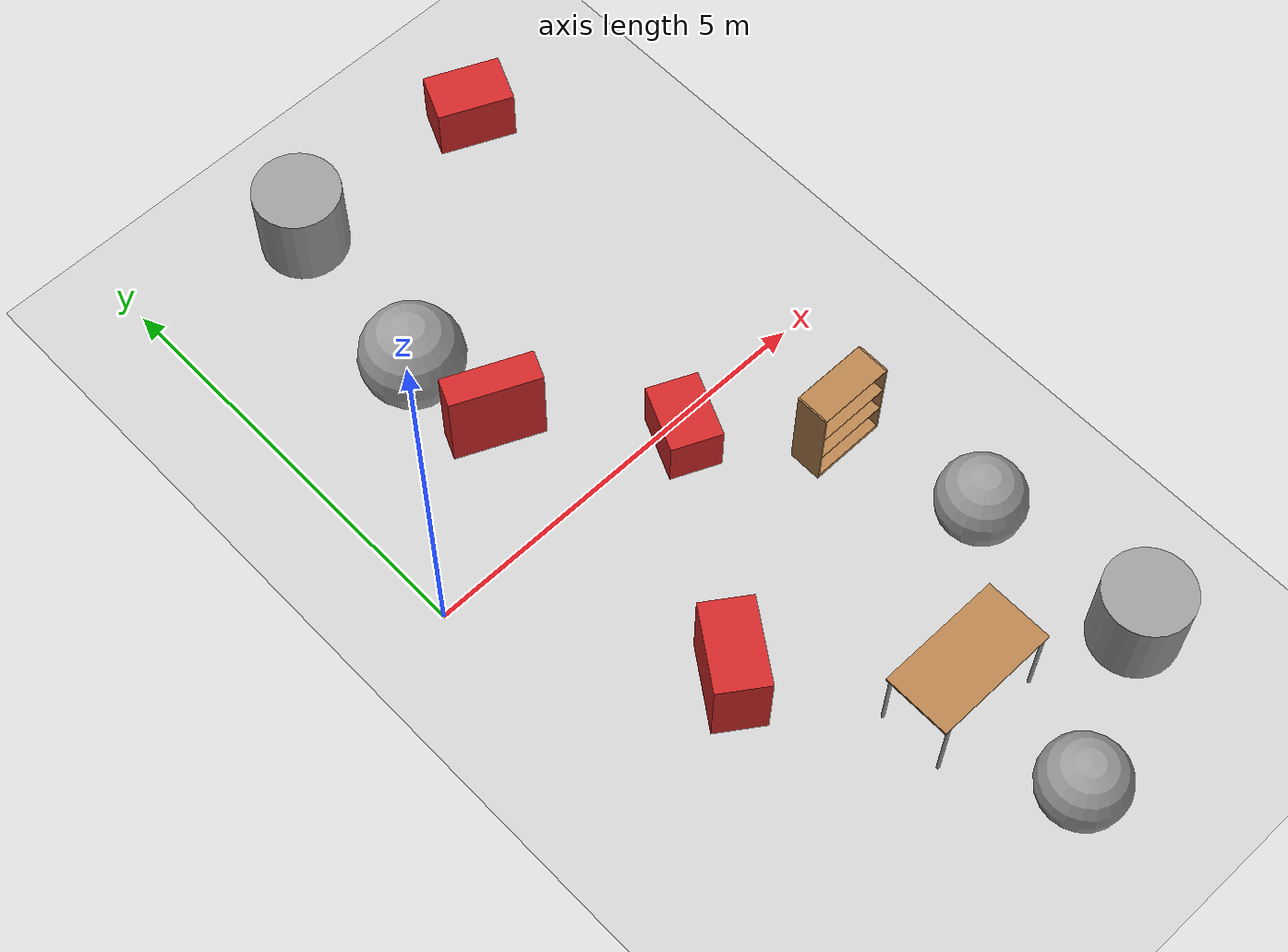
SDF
<sdf version="1.6">
 <world name="default">
  <model name="ground_plane">
   <static>1</static>
   <link name="link">
    <collision name="collision">
     <geometry><plane><normal>0 0 1</normal><size>100 100</size></plane></geometry>
     <surface>
      <contact><collide_bitmask>65535</collide_bitmask></contact>
      <friction><ode><mu>100</mu><mu2>50</mu2></ode></friction>
     </surface>
    </collision>
    <visual name="visual">
     <cast_shadows>0</cast_shadows>
     <geometry><plane><normal>0 0 1</normal><size>100 100</size></plane></geometry>
     <material>
      <script><uri>file://media/materials/scripts/gazebo.material</uri><name>Gazebo/Grey</name></script>
     </material>
    </visual>
   </link>
  </model>
  <model name="table_clone">
   <static>1</static>
   <link name="link">
    <collision name="surface">
     <pose>0 0 1 0 -0 0</pose>
     <geometry><box><size>1.5 0.8 0.03</size></box></geometry>
     <surface><friction><ode><mu>0.6</mu><mu2>0.6</mu2></ode></friction></surface>
    </collision>
    <visual name="visual1">
     <pose>0 0 1 0 -0 0</pose>
     <geometry><box><size>1.5 0.8 0.03</size></box></geometry>
     <material>
      <script><uri>file://media/materials/scripts/gazebo.material</uri><name>Gazebo/Wood</name></script>
     </material>
    </visual>
    <collision name="front_left_leg">
     <pose>0.68 0.38 0.5 0 -0 0</pose>
     <geometry><cylinder><radius>0.02</radius><length>1</length></cylinder></geometry>
    </collision>
    <visual name="front_left_leg">
     <pose>0.68 0.38 0.5 0 -0 0</pose>
     <geometry><cylinder><radius>0.02</radius><length>1</length></cylinder></geometry>
     <material>
      <script><uri>file://media/materials/scripts/gazebo.material</uri><name>Gazebo/Grey</name></script>
     </material>
    </visual>
    <collision name="front_right_leg">
     <pose>0.68 -0.38 0.5 0 -0 0</pose>
     <geometry><cylinder><radius>0.02</radius><length>1</length></cylinder></geometry>
    </collision>
    <visual name="front_right_leg">
     <pose>0.68 -0.38 0.5 0 -0 0</pose>
     <geometry><cylinder><radius>0.02</radius><length>1</length></cylinder></geometry>
     <material>
      <script><uri>file://media/materials/scripts/gazebo.material</uri><name>Gazebo/Grey</name></script>
     </material>
    </visual>
    <collision name="back_right_leg">
     <pose>-0.68 -0.38 0.5 0 -0 0</pose>
     <geometry><cylinder><radius>0.02</radius><length>1</length></cylinder></geometry>
    </collision>
    <visual name="back_right_leg">
     <pose>-0.68 -0.38 0.5 0 -0 0</pose>
     <geometry><cylinder><radius>0.02</radius><length>1</length></cylinder></geometry>
     <material>
      <script><uri>file://media/materials/scripts/gazebo.material</uri><name>Gazebo/Grey</name></script>
     </material>
    </visual>
    <collision name="back_left_leg">
     <pose>-0.68 0.38 0.5 0 -0 0</pose>
     <geometry><cylinder><radius>0.02</radius><length>1</length></cylinder></geometry>
    </collision>
    <visual name="back_left_leg">
     <pose>-0.68 0.38 0.5 0 -0 0</pose>
     <geometry><cylinder><radius>0.02</radius><length>1</length></cylinder></geometry>
     <material>
      <script><uri>file://media/materials/scripts/gazebo.material</uri><name>Gazebo/Grey</name></script>
     </material>
    </visual>
   </link>
   <pose>3.16978 -4.27284 0 0 -0 0</pose>
  </model>
  <model name="bookshelf_clone">
   <static>1</static>
   <link name="link">
    <inertial><mass>1</mass></inertial>
    <collision name="back">
     <pose>0 0.005 0.6 0 -0 0</pose>
     <geometry><box><size>0.9 0.01 1.2</size></box></geometry>
    </collision>
    <visual name="visual1">
     <pose>0 0.005 0.6 0 -0 0</pose>
     <geometry><box><size>0.9 0.01 1.2</size></box></geometry>
     <material>
      <script><uri>file://media/materials/scripts/gazebo.material</uri><name>Gazebo/Wood</name></script>
     </material>
    </visual>
    <collision name="left_side">
     <pose>0.45 -0.195 0.6 0 -0 0</pose>
     <geometry><box><size>0.02 0.4 1.2</size></box></geometry>
    </collision>
    <visual name="visual2">
     <pose>0.45 -0.195 0.6 0 -0 0</pose>
     <geometry><box><size>0.02 0.4 1.2</size></box></geometry>
     <material>
      <script><uri>file://media/materials/scripts/gazebo.material</uri><name>Gazebo/Wood</name></script>
     </material>
    </visual>
    <collision name="right_side">
     <pose>-0.45 -0.195 0.6 0 -0 0</pose>
     <geometry><box><size>0.02 0.4 1.2</size></box></geometry>
    </collision>
    <visual name="visual3">
     <pose>-0.45 -0.195 0.6 0 -0 0</pose>
     <geometry><box><size>0.02 0.4 1.2</size></box></geometry>
     <material>
      <script><uri>file://media/materials/scripts/gazebo.material</uri><name>Gazebo/Wood</name></script>
     </material>
    </visual>
    <collision name="bottom">
     <pose>0 -0.195 0.03 0 -0 0</pose>
     <geometry><box><size>0.88 0.4 0.06</size></box></geometry>
    </collision>
    <visual name="visual4">
     <pose>0 -0.195 0.03 0 -0 0</pose>
     <geometry><box><size>0.88 0.4 0.06</size></box></geometry>
     <material>
      <script><uri>file://media/materials/scripts/gazebo.material</uri><name>Gazebo/Wood</name></script>
     </material>
    </visual>
    <collision name="top">
     <pose>0 -0.195 1.19 0 -0 0</pose>
     <geometry><box><size>0.88 0.4 0.02</size></box></geometry>
    </collision>
    <visual name="visual5">
     <pose>0 -0.195 1.19 0 -0 0</pose>
     <geometry><box><size>0.88 0.4 0.02</size></box></geometry>
     <material>
      <script><uri>file://media/materials/scripts/gazebo.material</uri><name>Gazebo/Wood</name></script>
     </material>
    </visual>
    <collision name="low_shelf">
     <pose>0 -0.195 0.43 0 -0 0</pose>
     <geometry><box><size>0.88 0.4 0.02</size></box></geometry>
    </collision>
    <visual name="visual6">
     <pose>0 -0.195 0.43 0 -0 0</pose>
     <geometry><box><size>0.88 0.4 0.02</size></box></geometry>
     <material>
      <script><uri>file://media/materials/scripts/gazebo.material</uri><name>Gazebo/Wood</name></script>
     </material>
    </visual>
    <collision name="high_shelf">
     <pose>0 -0.195 0.8 0 -0 0</pose>
     <geometry><box><size>0.88 0.4 0.02</size></box></geometry>
    </collision>
    <visual name="visual7">
     <pose>0 -0.195 0.8 0 -0 0</pose>
     <geometry><box><size>0.88 0.4 0.02</size></box></geometry>
     <material>
      <script><uri>file://media/materials/scripts/gazebo.material</uri><name>Gazebo/Wood</name></script>
     </material>
    </visual>
   </link>
   <pose>4.43049 -1.13981 0 0 -0 4e-06</pose>
  </model>
  <model name="unit_cylinder_1">
   <pose>1.96335 4.55514 0.5 0 -0 0</pose>
   <link name="link">
    <inertial>
     <mass>1</mass>
     <inertia><ixx>0.145833</ixx><ixy>0</ixy><ixz>0</ixz><iyy>0.145833</iyy><iyz>0</iyz><izz>0.125</izz></inertia>
    </inertial>
    <collision name="collision">
     <geometry><cylinder><radius>0.501667</radius><length>1</length></cylinder></geometry>
    </collision>
    <visual name="visual">
     <geometry><cylinder><radius>0.501667</radius><length>1</length></cylinder></geometry>
     <material>
      <script><name>Gazebo/Grey</name><uri>file://media/materials/scripts/gazebo.material</uri></script>
     </material>
    </visual>
   </link>
  </model>
  <model name="unit_sphere_0">
   <pose>1.6417 2.30704 0.591817 0 -0 0</pose>
   <link name="link">
    <inertial>
     <mass>1</mass>
     <inertia><ixx>0.1</ixx><ixy>0</ixy><ixz>0</ixz><iyy>0.1</iyy><iyz>0</iyz><izz>0.1</izz></inertia>
    </inertial>
    <collision name="collision"><geometry><sphere><radius>0.591817</radius></sphere></geometry></collision>
    <visual name="visual">
     <geometry><sphere><radius>0.591817</radius></sphere></geometry>
     <material>
      <script><name>Gazebo/Grey</name><uri>file://media/materials/scripts/gazebo.material</uri></script>
     </material>
    </visual>
   </link>
  </model>
  <model name="unit_sphere_1">
   <pose>4.81114 -3.03675 0.5 0 -0 0</pose>
   <link name="link">
    <inertial>
     <mass>1</mass>
     <inertia><ixx>0.1</ixx><ixy>0</ixy><ixz>0</ixz><iyy>0.1</iyy><iyz>0</iyz><izz>0.1</izz></inertia>
    </inertial>
    <collision name="collision"><geometry><sphere><radius>0.5</radius></sphere></geometry></collision>
    <visual name="visual">
     <geometry><sphere><radius>0.5</radius></sphere></geometry>
     <material>
      <script><name>Gazebo/Grey</name><uri>file://media/materials/scripts/gazebo.material</uri></script>
     </material>
    </visual>
   </link>
  </model>
  <model name="unit_sphere_2">
   <pose>3.22839 -5.83427 0.5 0 -0 0</pose>
   <link name="link">
    <inertial>
     <mass>1</mass>
     <inertia><ixx>0.1</ixx><ixy>0</ixy><ixz>0</ixz><iyy>0.1</iyy><iyz>0</iyz><izz>0.1</izz></inertia>
    </inertial>
    <collision name="collision"><geometry><sphere><radius>0.5</radius></sphere></geometry></collision>
    <visual name="visual">
     <geometry><sphere><radius>0.5</radius></sphere></geometry>
     <material>
      <script><name>Gazebo/Grey</name><uri>file://media/materials/scripts/gazebo.material</uri></script>
     </material>
    </visual>
   </link>
  </model>
  <model name="unit_cylinder_3">
   <pose>5.01945 -5.03504 0.5 0 -0 0</pose>
   <link name="link">
    <inertial>
     <mass>1</mass>
     <inertia><ixx>0.145833</ixx><ixy>0</ixy><ixz>0</ixz><iyy>0.145833</iyy><iyz>0</iyz><izz>0.125</izz></inertia>
    </inertial>
    <collision name="collision">
     <geometry><cylinder><radius>0.5</radius><length>1</length></cylinder></geometry>
    </collision>
    <visual name="visual">
     <geometry><cylinder><radius>0.5</radius><length>1</length></cylinder></geometry>
     <material>
      <script><name>Gazebo/Grey</name><uri>file://media/materials/scripts/gazebo.material</uri></script>
     </material>
    </visual>
   </link>
  </model>
  <model name="unit_box_6">
   <link name="link">
    <inertial>
     <mass>1</mass>
     <inertia>
      <ixx>0.166667</ixx>
      <ixy>0</ixy>
      <ixz>0</ixz>
      <iyy>0.166667</iyy>
      <iyz>0</iyz>
      <izz>0.166667</izz>
     </inertia>
    </inertial>
    <visual name="visual">
     <geometry><box><size>1 0.598607 1</size></box></geometry>
     <material>
      <script><name>Gazebo/Red</name><uri>file://media/materials/scripts/gazebo.material</uri></script>
      <shader type="pixel"><normal_map>__default__</normal_map></shader>
      <ambient>1 0 0 1</ambient>
      <diffuse>1 0 0 1</diffuse>
      <specular>0.1 0.1 0.1 1</specular>
      <emissive>0 0 0 1</emissive>
     </material>
    </visual>
    <collision name="collision">
     <geometry><box><size>1 0.598607 1</size></box></geometry>
     <surface>
      <friction>
       <ode><mu>1</mu><mu2>1</mu2><fdir1>0 0 0</fdir1><slip1>0</slip1><slip2>0</slip2></ode>
       <torsional>
        <coefficient>1</coefficient>
        <patch_radius>0</patch_radius>
        <surface_radius>0</surface_radius>
        <use_patch_radius>1</use_patch_radius>
        <ode><slip>0</slip></ode>
       </torsional>
      </friction>
      <bounce><restitution_coefficient>0</restitution_coefficient><threshold>1e+06</threshold></bounce>
      <contact>
       <collide_without_contact>0</collide_without_contact>
       <collide_without_contact_bitmask>1</collide_without_contact_bitmask>
       <collide_bitmask>1</collide_bitmask>
       <ode>
        <soft_cfm>0</soft_cfm>
        <soft_erp>0.2</soft_erp>
        <kp>1e+13</kp>
        <kd>1</kd>
        <max_vel>0.01</max_vel>
        <min_depth>0</min_depth>
       </ode>
       <bullet>
        <split_impulse>1</split_impulse>
        <split_impulse_penetration_threshold>-0.01</split_impulse_penetration_threshold>
        <soft_cfm>0</soft_cfm>
        <soft_erp>0.2</soft_erp>
        <kp>1e+13</kp>
        <kd>1</kd>
       </bullet>
      </contact>
     </surface>
    </collision>
   </link>
   <static>0</static>
   <pose>1.61932 -2.58894 0.499997 0 -7e-06 0.96897</pose>
  </model>
  <model name="unit_box_3_clone">
   <link name="link">
    <inertial>
     <mass>1</mass>
     <inertia>
      <ixx>0.166667</ixx>
      <ixy>0</ixy>
      <ixz>0</ixz>
      <iyy>0.166667</iyy>
      <iyz>0</iyz>
      <izz>0.166667</izz>
     </inertia>
    </inertial>
    <visual name="visual">
     <geometry><box><size>0.898962 0.587718 0.68729</size></box></geometry>
     <material>
      <script><name>Gazebo/Red</name><uri>file://media/materials/scripts/gazebo.material</uri></script>
      <shader type="pixel"><normal_map>__default__</normal_map></shader>
      <ambient>1 0 0 1</ambient>
      <diffuse>1 0 0 1</diffuse>
      <specular>0.1 0.1 0.1 1</specular>
      <emissive>0 0 0 1</emissive>
     </material>
    </visual>
    <collision name="collision">
     <geometry><box><size>0.898962 0.587718 0.68729</size></box></geometry>
     <surface>
      <friction>
       <ode><mu>1</mu><mu2>1</mu2><fdir1>0 0 0</fdir1><slip1>0</slip1><slip2>0</slip2></ode>
       <torsional>
        <coefficient>1</coefficient>
        <patch_radius>0</patch_radius>
        <surface_radius>0</surface_radius>
        <use_patch_radius>1</use_patch_radius>
        <ode><slip>0</slip></ode>
       </torsional>
      </friction>
      <bounce><restitution_coefficient>0</restitution_coefficient><threshold>1e+06</threshold></bounce>
      <contact>
       <collide_without_contact>0</collide_without_contact>
       <collide_without_contact_bitmask>1</collide_without_contact_bitmask>
       <collide_bitmask>1</collide_bitmask>
       <ode>
        <soft_cfm>0</soft_cfm>
        <soft_erp>0.2</soft_erp>
        <kp>1e+13</kp>
        <kd>1</kd>
        <max_vel>0.01</max_vel>
        <min_depth>0</min_depth>
       </ode>
       <bullet>
        <split_impulse>1</split_impulse>
        <split_impulse_penetration_threshold>-0.01</split_impulse_penetration_threshold>
        <soft_cfm>0</soft_cfm>
        <soft_erp>0.2</soft_erp>
        <kp>1e+13</kp>
        <kd>1</kd>
       </bullet>
      </contact>
     </surface>
    </collision>
   </link>
   <static>0</static>
   <pose>4.40236 4.48783 0.343645 0 -0 -0.420452</pose>
  </model>
  <model name="unit_box_3_clone_0">
   <link name="link">
    <inertial>
     <mass>1</mass>
     <inertia>
      <ixx>0.166667</ixx>
      <ixy>0</ixy>
      <ixz>0</ixz>
      <iyy>0.166667</iyy>
      <iyz>0</iyz>
      <izz>0.166667</izz>
     </inertia>
    </inertial>
    <visual name="visual">
     <geometry><box><size>0.597837 0.799608 0.635867</size></box></geometry>
     <material>
      <script><name>Gazebo/Red</name><uri>file://media/materials/scripts/gazebo.material</uri></script>
      <shader type="pixel"><normal_map>__default__</normal_map></shader>
      <ambient>1 0 0 1</ambient>
      <diffuse>1 0 0 1</diffuse>
      <specular>0.1 0.1 0.1 1</specular>
      <emissive>0 0 0 1</emissive>
     </material>
    </visual>
    <collision name="collision">
     <geometry><box><size>0.597837 0.799608 0.635867</size></box></geometry>
     <surface>
      <friction>
       <ode><mu>1</mu><mu2>1</mu2><fdir1>0 0 0</fdir1><slip1>0</slip1><slip2>0</slip2></ode>
       <torsional>
        <coefficient>1</coefficient>
        <patch_radius>0</patch_radius>
        <surface_radius>0</surface_radius>
        <use_patch_radius>1</use_patch_radius>
        <ode><slip>0</slip></ode>
       </torsional>
      </friction>
      <bounce><restitution_coefficient>0</restitution_coefficient><threshold>1e+06</threshold></bounce>
      <contact>
       <collide_without_contact>0</collide_without_contact>
       <collide_without_contact_bitmask>1</collide_without_contact_bitmask>
       <collide_bitmask>1</collide_bitmask>
       <ode>
        <soft_cfm>0</soft_cfm>
        <soft_erp>0.2</soft_erp>
        <kp>1e+13</kp>
        <kd>1</kd>
        <max_vel>0.01</max_vel>
        <min_depth>0</min_depth>
       </ode>
       <bullet>
        <split_impulse>1</split_impulse>
        <split_impulse_penetration_threshold>-0.01</split_impulse_penetration_threshold>
        <soft_cfm>0</soft_cfm>
        <soft_erp>0.2</soft_erp>
        <kp>1e+13</kp>
        <kd>1</kd>
       </bullet>
      </contact>
     </surface>
    </collision>
   </link>
   <static>0</static>
   <pose>3.25092 -0.211884 0.317934 0 -0 -0.420452</pose>
  </model>
  <model name="unit_box_3_clone_1">
   <link name="link">
    <inertial>
     <mass>1</mass>
     <inertia>
      <ixx>0.166667</ixx>
      <ixy>0</ixy>
      <ixz>0</ixz>
      <iyy>0.166667</iyy>
      <iyz>0</iyz>
      <izz>0.166667</izz>
     </inertia>
    </inertial>
    <visual name="visual">
     <geometry><box><size>1.04886 0.344574 1.13518</size></box></geometry>
     <material>
      <script><name>Gazebo/Red</name><uri>file://media/materials/scripts/gazebo.material</uri></script>
      <shader type="pixel"><normal_map>__default__</normal_map></shader>
      <ambient>1 0 0 1</ambient>
      <diffuse>1 0 0 1</diffuse>
      <specular>0.1 0.1 0.1 1</specular>
      <emissive>0 0 0 1</emissive>
     </material>
    </visual>
    <collision name="collision">
     <geometry><box><size>1.04886 0.344574 1.13518</size></box></geometry>
     <surface>
      <friction>
       <ode><mu>1</mu><mu2>1</mu2><fdir1>0 0 0</fdir1><slip1>0</slip1><slip2>0</slip2></ode>
       <torsional>
        <coefficient>1</coefficient>
        <patch_radius>0</patch_radius>
        <surface_radius>0</surface_radius>
        <use_patch_radius>1</use_patch_radius>
        <ode><slip>0</slip></ode>
       </torsional>
      </friction>
      <bounce><restitution_coefficient>0</restitution_coefficient><threshold>1e+06</threshold></bounce>
      <contact>
       <collide_without_contact>0</collide_without_contact>
       <collide_without_contact_bitmask>1</collide_without_contact_bitmask>
       <collide_bitmask>1</collide_bitmask>
       <ode>
        <soft_cfm>0</soft_cfm>
        <soft_erp>0.2</soft_erp>
        <kp>1e+13</kp>
        <kd>1</kd>
        <max_vel>0.01</max_vel>
        <min_depth>0</min_depth>
       </ode>
       <bullet>
        <split_impulse>1</split_impulse>
        <split_impulse_penetration_threshold>-0.01</split_impulse_penetration_threshold>
        <soft_cfm>0</soft_cfm>
        <soft_erp>0.2</soft_erp>
        <kp>1e+13</kp>
        <kd>1</kd>
       </bullet>
      </contact>
     </surface>
    </collision>
   </link>
   <static>0</static>
   <pose>1.86172 1.25321 0.567586 1e-06 -8e-06 -0.42039</pose>
  </model>
 </world>
</sdf>
